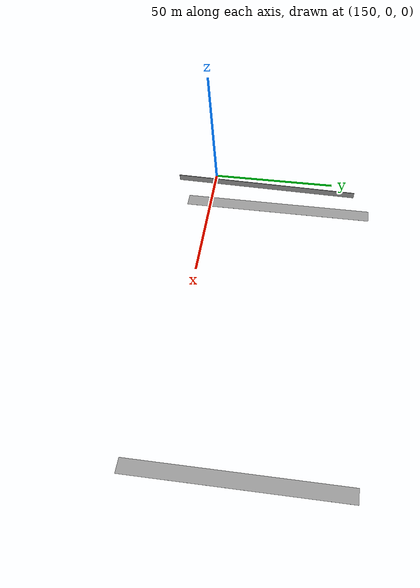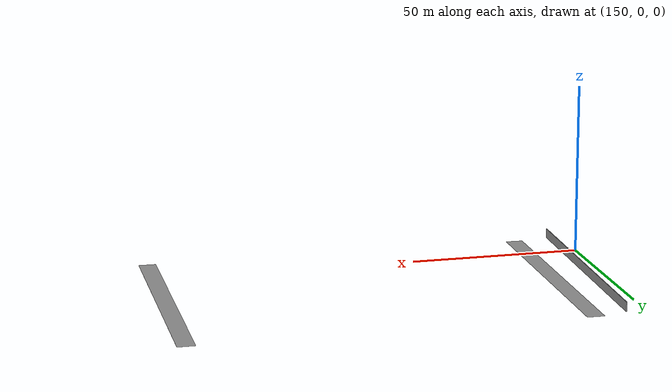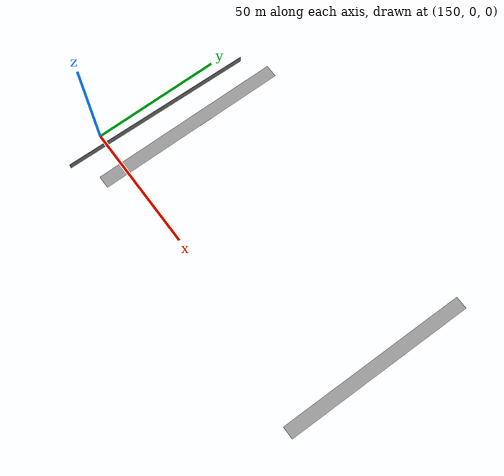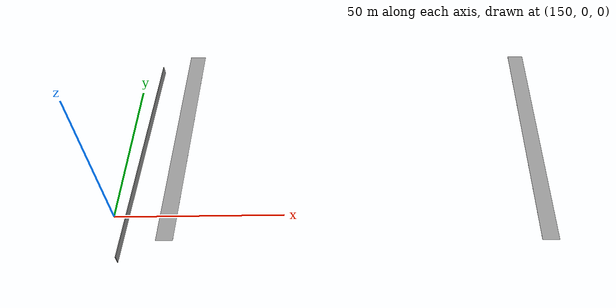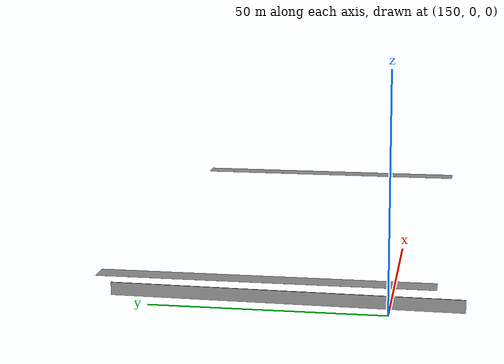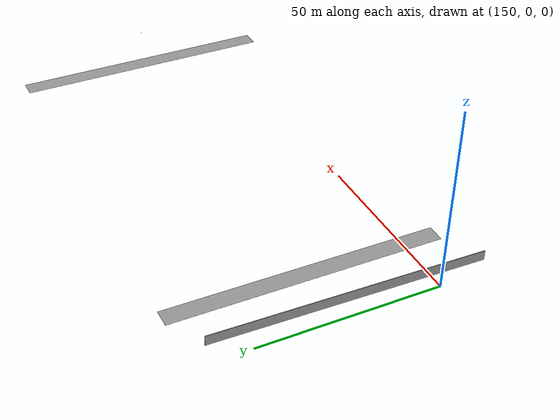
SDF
<sdf version="1.6">
 <world name="default">
  <model name="grey_wall2_3_clone_5_clone">
   <static>1</static>
   <link name="link">
    <pose>0 0 1.4 0 -0 0</pose>
    <collision name="collision"><geometry><box><size>75 5 0.01</size></box></geometry></collision>
    <visual name="visual">
     <cast_shadows>0</cast_shadows>
     <geometry><box><size>75 5 0.01</size></box></geometry>
     <material>
      <script>
       <uri>model://grey_wall/materials/scripts</uri>
       <uri>model://grey_wall/materials/textures</uri>
       <name>vrc/grey_wall</name>
      </script>
     </material>
    </visual>
   </link>
   <pose>277.135 27.123 0 0 0 -1.57442</pose>
  </model>
  <model name="grey_wall2_3_clone_5_clone_0">
   <static>1</static>
   <link name="link">
    <pose>0 0 1.4 0 -0 0</pose>
    <collision name="collision"><geometry><box><size>75 5 0.01</size></box></geometry></collision>
    <visual name="visual">
     <cast_shadows>0</cast_shadows>
     <geometry><box><size>75 5 0.01</size></box></geometry>
     <material>
      <script>
       <uri>model://grey_wall/materials/scripts</uri>
       <uri>model://grey_wall/materials/textures</uri>
       <name>vrc/grey_wall</name>
      </script>
     </material>
    </visual>
   </link>
   <pose>166.425 28.2472 0 0 0 -1.57442</pose>
  </model>
  <model name="wooden_peg">
   <link name="link">
    <pose>0 0 0.04 0 -0 0</pose>
    <inertial>
     <mass>0.0175</mass>
     <inertia>
      <ixx>9.74923e-06</ixx>
      <ixy>0</ixy>
      <ixz>0</ixz>
      <iyy>9.74923e-06</iyy>
      <iyz>0</iyz>
      <izz>8.31797e-07</izz>
     </inertia>
    </inertial>
    <collision name="collision">
     <geometry><cylinder><radius>0.00975</radius><length>0.08</length></cylinder></geometry>
     <surface>
      <contact>
       <poissons_ratio>0.347</poissons_ratio>
       <elastic_modulus>8.8e+09</elastic_modulus>
       <ode><kp>100000</kp><kd>100</kd><max_vel>100</max_vel><min_depth>0.001</min_depth></ode>
      </contact>
      <friction>
       <torsional>
        <coefficient>1</coefficient>
        <use_patch_radius>0</use_patch_radius>
        <surface_radius>0.01</surface_radius>
       </torsional>
      </friction>
     </surface>
    </collision>
    <visual name="visual">
     <geometry><cylinder><radius>0.00975</radius><length>0.08</length></cylinder></geometry>
     <material>
      <script><uri>file://media/materials/scripts/gazebo.material</uri><name>Gazebo/Wood</name></script>
     </material>
    </visual>
   </link>
   <pose>297.91 19.6489 0.009187 1.56481 0.583852 0.005516</pose>
  </model>
  <model name="grey_wall_clone_clone_0_clone_5">
   <static>1</static>
   <link name="link">
    <pose>0 0 1.4 0 -0 0</pose>
    <collision name="collision"><geometry><box><size>75 0.2 2.8</size></box></geometry></collision>
    <visual name="visual">
     <cast_shadows>0</cast_shadows>
     <geometry><box><size>75 0.2 2.8</size></box></geometry>
     <material>
      <script>
       <uri>model://grey_wall/materials/scripts</uri>
       <uri>model://grey_wall/materials/textures</uri>
       <name>vrc/grey_wall</name>
      </script>
     </material>
    </visual>
   </link>
   <pose>154.834 22.0672 0 0 0 -1.59331</pose>
  </model>
 </world>
</sdf>
